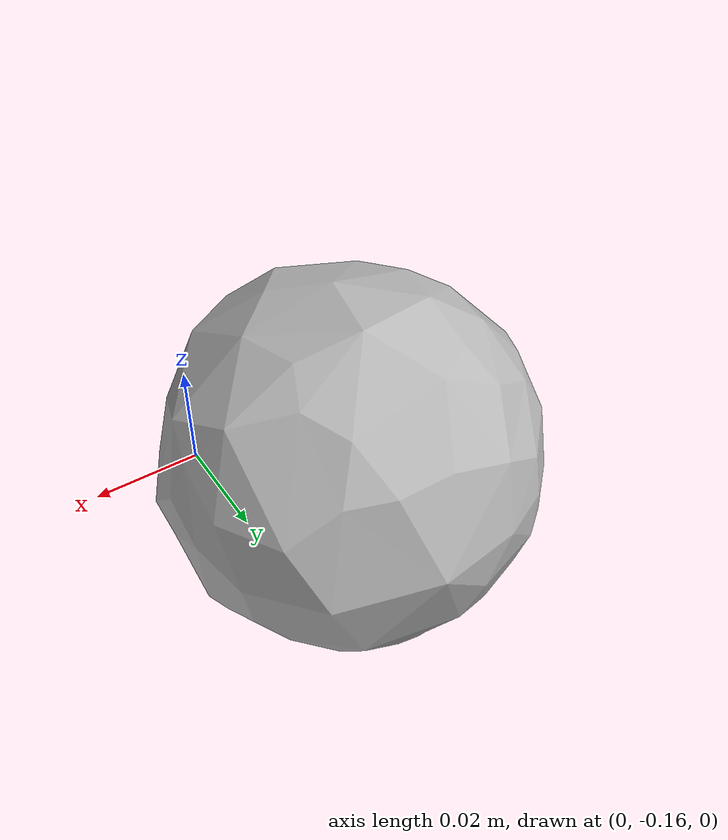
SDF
<?xml version='1.0'?>
<sdf version="1.4">
  <model name="057_racquetball">
    <static>false</static>
    <link name="link">
      <inertial>
        <pose>-0.009070968518695172 -0.1222165731742254 0.027571224308321422 1.001297874700398 -1.144079135275561 -2.4803368498364917</pose>
        <mass>0.00910625656947882</mass>
        <inertia>
          <ixx>2.8448037299201676e-06</ixx>
          <ixy>-2.117839760328428e-22</ixy>
          <ixz>1.5777325038090438e-24</ixz>
          <iyy>2.842799075012142e-06</iyy>
          <iyz>6.042160871009089e-24</iyz>
          <izz>2.8244779860206293e-06</izz>
        </inertia>
      </inertial>
      <collision name="collision">
        <geometry>
          <mesh>
            <!-- Use a downsampled mesh for collisions -->
            <uri>model:///057_racquetball/057_racquetball_250_collision.stl</uri>
	        </mesh>
        </geometry>
        <surface>
      </surface>
      </collision>
      <visual name="visual">
        <geometry>
          <mesh>
            <uri>model:///057_racquetball/textured.obj</uri>
	        </mesh>
        </geometry>
        <material>
          <script>
            <uri>model:///057_racquetball/057_racquetball.material</uri>
            <name>057_racquetball</name>
          </script>
        </material>
      </visual>
    </link>
  </model>
</sdf>
